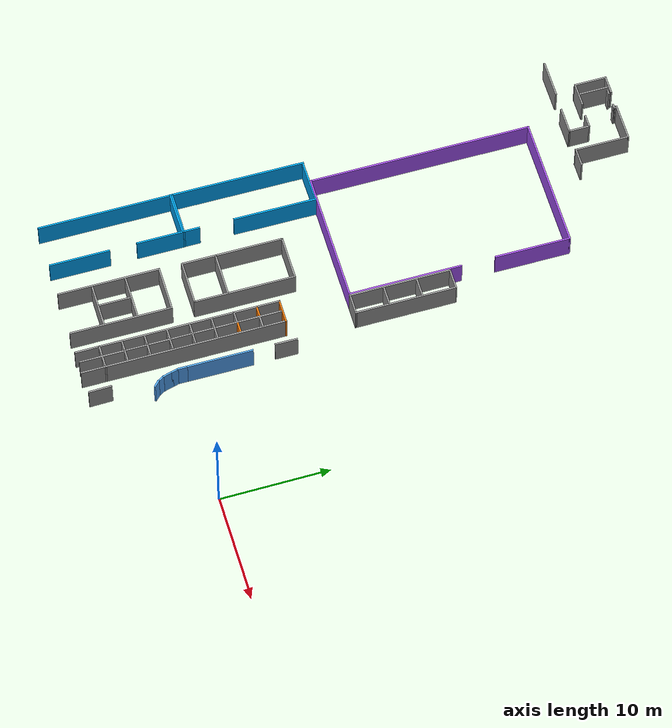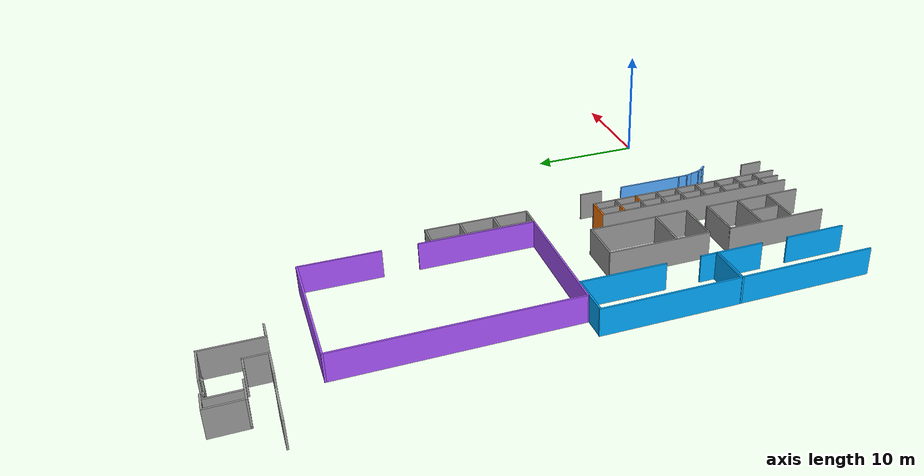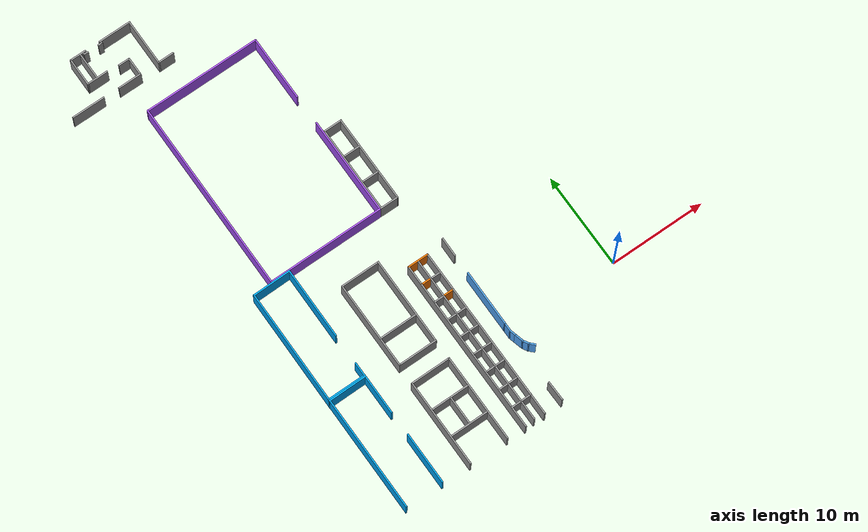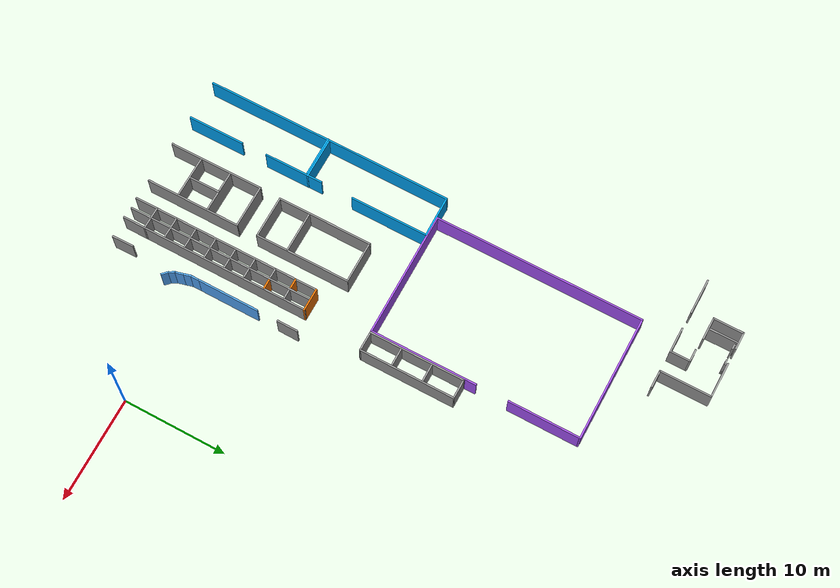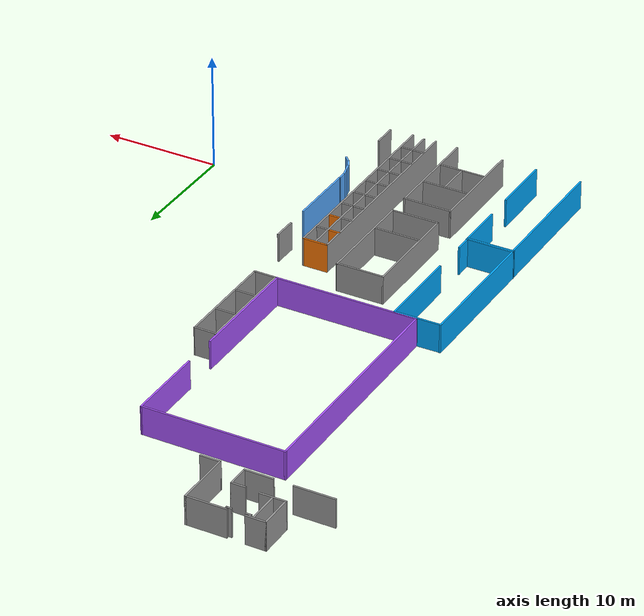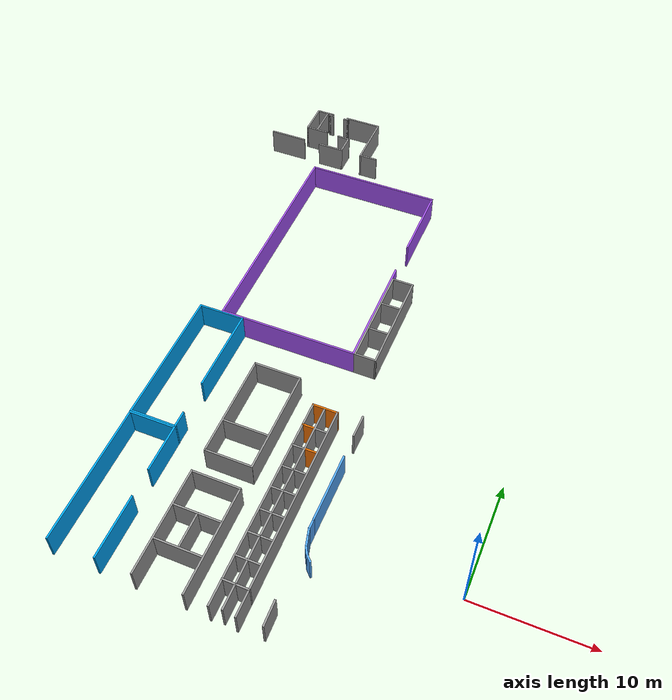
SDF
<sdf version="1.6">
 <model name="rebuilt_1">
  <pose>-2.12726 -2.76078 0 0 -0 0</pose>
  <link name="Wall_340">
   <collision name="Wall_340_Collision">
    <geometry><box><size>9.25 0.15 2.5</size></box></geometry>
    <pose>0 0 1.25 0 -0 0</pose>
   </collision>
   <visual name="Wall_340_Visual">
    <pose>0 0 1.25 0 -0 0</pose>
    <geometry><box><size>9.25 0.15 2.5</size></box></geometry>
    <material>
     <script><uri>file://media/materials/scripts/gazebo.material</uri><name>Gazebo/Grey</name></script>
     <ambient>1 1 1 1</ambient>
    </material>
    <meta><layer>0</layer></meta>
   </visual>
   <pose>-15.9433 -0.9593 0 0 0 -1.5708</pose>
  </link>
  <link name="Wall_342">
   <collision name="Wall_342_Collision">
    <geometry><box><size>9.25 0.15 2.5</size></box></geometry>
    <pose>0 0 1.25 0 -0 0</pose>
   </collision>
   <visual name="Wall_342_Visual">
    <pose>0 0 1.25 0 -0 0</pose>
    <geometry><box><size>9.25 0.15 2.5</size></box></geometry>
    <material>
     <script><uri>file://media/materials/scripts/gazebo.material</uri><name>Gazebo/Grey</name></script>
     <ambient>1 1 1 1</ambient>
    </material>
    <meta><layer>0</layer></meta>
   </visual>
   <pose>-20.0433 -0.9593 0 0 -0 1.5708</pose>
  </link>
  <link name="Wall_343">
   <collision name="Wall_343_Collision">
    <geometry><box><size>4.25 0.15 2.5</size></box></geometry>
    <pose>0 0 1.25 0 -0 0</pose>
   </collision>
   <visual name="Wall_343_Visual">
    <pose>0 0 1.25 0 -0 0</pose>
    <geometry><box><size>4.25 0.15 2.5</size></box></geometry>
    <material>
     <script><uri>file://media/materials/scripts/gazebo.material</uri><name>Gazebo/Grey</name></script>
     <ambient>1 1 1 1</ambient>
    </material>
    <meta><layer>0</layer></meta>
   </visual>
   <pose>-17.9933 3.5907 0 0 -0 0</pose>
  </link>
  <link name="Wall_345">
   <collision name="Wall_345_Collision">
    <geometry><box><size>4 0.15 2.5</size></box></geometry>
    <pose>0 0 1.25 0 -0 0</pose>
   </collision>
   <visual name="Wall_345_Visual">
    <pose>0 0 1.25 0 -0 0</pose>
    <geometry><box><size>4 0.15 2.5</size></box></geometry>
    <material>
     <script><uri>file://media/materials/scripts/gazebo.material</uri><name>Gazebo/Grey</name></script>
     <ambient>1 1 1 1</ambient>
    </material>
    <meta><layer>0</layer></meta>
   </visual>
   <pose>-17.9697 0.52391 0 0 -0 0</pose>
  </link>
  <link name="Wall_347">
   <collision name="Wall_347_Collision">
    <geometry><box><size>4 0.15 2.5</size></box></geometry>
    <pose>0 0 1.25 0 -0 0</pose>
   </collision>
   <visual name="Wall_347_Visual">
    <pose>0 0 1.25 0 -0 0</pose>
    <geometry><box><size>4 0.15 2.5</size></box></geometry>
    <material>
     <script><uri>file://media/materials/scripts/gazebo.material</uri><name>Gazebo/Grey</name></script>
     <ambient>1 1 1 1</ambient>
    </material>
    <meta><layer>0</layer></meta>
   </visual>
   <pose>-17.9697 -2.4839 0 0 -0 0</pose>
  </link>
  <link name="Wall_349">
   <collision name="Wall_349_Collision">
    <geometry><box><size>3 0.15 2.5</size></box></geometry>
    <pose>0 0 1.25 0 -0 0</pose>
   </collision>
   <visual name="Wall_349_Visual">
    <pose>0 0 1.25 0 -0 0</pose>
    <geometry><box><size>3 0.15 2.5</size></box></geometry>
    <material>
     <script><uri>file://media/materials/scripts/gazebo.material</uri><name>Gazebo/Grey</name></script>
     <ambient>1 1 1 1</ambient>
    </material>
    <meta><layer>0</layer></meta>
   </visual>
   <pose>-17.9485 -0.94095 0 0 -0 1.5708</pose>
  </link>
  <link name="Wall_352">
   <collision name="Wall_352_Collision">
    <geometry><box><size>9.25 0.15 2.5</size></box></geometry>
    <pose>0 0 1.25 0 -0 0</pose>
   </collision>
   <visual name="Wall_352_Visual">
    <pose>0 0 1.25 0 -0 0</pose>
    <geometry><box><size>9.25 0.15 2.5</size></box></geometry>
    <material>
     <script><uri>file://media/materials/scripts/gazebo.material</uri><name>Gazebo/Grey</name></script>
     <ambient>1 1 1 1</ambient>
    </material>
    <meta><layer>0</layer></meta>
   </visual>
   <pose>-19.9832 10.2049 0 0 -0 1.5708</pose>
  </link>
  <link name="Wall_353">
   <collision name="Wall_353_Collision">
    <geometry><box><size>4.14663 0.15 2.5</size></box></geometry>
    <pose>0 0 1.25 0 -0 0</pose>
   </collision>
   <visual name="Wall_353_Visual">
    <pose>0 0 1.25 0 -0 0</pose>
    <geometry><box><size>4.14663 0.15 2.5</size></box></geometry>
    <material>
     <script><uri>file://media/materials/scripts/gazebo.material</uri><name>Gazebo/Grey</name></script>
     <ambient>1 1 1 1</ambient>
    </material>
    <meta><layer>0</layer></meta>
   </visual>
   <pose>-17.9848 14.7549 0 0 -0 0</pose>
  </link>
  <link name="Wall_354">
   <collision name="Wall_354_Collision">
    <geometry><box><size>9.25 0.15 2.5</size></box></geometry>
    <pose>0 0 1.25 0 -0 0</pose>
   </collision>
   <visual name="Wall_354_Visual">
    <pose>0 0 1.25 0 -0 0</pose>
    <geometry><box><size>9.25 0.15 2.5</size></box></geometry>
    <material>
     <script><uri>file://media/materials/scripts/gazebo.material</uri><name>Gazebo/Grey</name></script>
     <ambient>1 1 1 1</ambient>
    </material>
    <meta><layer>0</layer></meta>
   </visual>
   <pose>-15.9671 10.2049 0 0 0 -1.5708</pose>
  </link>
  <link name="Wall_355">
   <collision name="Wall_355_Collision">
    <geometry><box><size>4.14663 0.15 2.5</size></box></geometry>
    <pose>0 0 1.25 0 -0 0</pose>
   </collision>
   <visual name="Wall_355_Visual">
    <pose>0 0 1.25 0 -0 0</pose>
    <geometry><box><size>4.14663 0.15 2.5</size></box></geometry>
    <material>
     <script><uri>file://media/materials/scripts/gazebo.material</uri><name>Gazebo/Grey</name></script>
     <ambient>1 1 1 1</ambient>
    </material>
    <meta><layer>0</layer></meta>
   </visual>
   <pose>-17.9848 5.65489 0 0 -0 3.14159</pose>
  </link>
  <link name="Wall_357">
   <collision name="Wall_357_Collision">
    <geometry><box><size>4 0.15 2.5</size></box></geometry>
    <pose>0 0 1.25 0 -0 0</pose>
   </collision>
   <visual name="Wall_357_Visual">
    <pose>0 0 1.25 0 -0 0</pose>
    <geometry><box><size>4 0.15 2.5</size></box></geometry>
    <material>
     <script><uri>file://media/materials/scripts/gazebo.material</uri><name>Gazebo/Grey</name></script>
     <ambient>1 1 1 1</ambient>
    </material>
    <meta><layer>0</layer></meta>
   </visual>
   <pose>-17.9769 8.69326 0 0 -0 0</pose>
  </link>
  <link name="Wall_378">
   <collision name="Wall_378_Collision">
    <geometry><box><size>2.05556 0.15 2.5</size></box></geometry>
    <pose>0 0 1.25 0 -0 0</pose>
   </collision>
   <visual name="Wall_378_Visual">
    <pose>0 0 1.25 0 -0 0</pose>
    <geometry><box><size>2.05556 0.15 2.5</size></box></geometry>
    <material>
     <script><uri>file://media/materials/scripts/gazebo.material</uri><name>Gazebo/Grey</name></script>
     <ambient>1 1 1 1</ambient>
    </material>
    <meta><layer>0</layer></meta>
   </visual>
   <pose>-9.85047 12.2135 0 0 -0 1.55916</pose>
  </link>
  <link name="Wall_380">
   <collision name="Wall_380_Collision">
    <geometry><box><size>2.25 0.15 2.5</size></box></geometry>
    <pose>0 0 1.25 0 -0 0</pose>
   </collision>
   <visual name="Wall_380_Visual">
    <pose>0 0 1.25 0 -0 0</pose>
    <geometry><box><size>2.25 0.15 2.5</size></box></geometry>
    <material>
     <script><uri>file://media/materials/scripts/gazebo.material</uri><name>Gazebo/Grey</name></script>
     <ambient>0.996078 0.47451 0.0196078 1</ambient>
    </material>
    <meta><layer>0</layer></meta>
   </visual>
   <pose>-12.8961 12.7674 0 0 -0 0</pose>
  </link>
  <link name="Wall_381">
   <collision name="Wall_381_Collision">
    <geometry><box><size>18.507 0.15 2.5</size></box></geometry>
    <pose>0 0 1.25 0 -0 0</pose>
   </collision>
   <visual name="Wall_381_Visual">
    <pose>0 0 1.25 0 -0 0</pose>
    <geometry><box><size>18.507 0.15 2.5</size></box></geometry>
    <material>
     <script><uri>file://media/materials/scripts/gazebo.material</uri><name>Gazebo/Grey</name></script>
     <ambient>1 1 1 1</ambient>
    </material>
    <meta><layer>0</layer></meta>
   </visual>
   <pose>-11.8501 3.58894 0 0 0 -1.57041</pose>
  </link>
  <link name="Wall_383">
   <collision name="Wall_383_Collision">
    <geometry><box><size>18.5 0.15 2.5</size></box></geometry>
    <pose>0 0 1.25 0 -0 0</pose>
   </collision>
   <visual name="Wall_383_Visual">
    <pose>0 0 1.25 0 -0 0</pose>
    <geometry><box><size>18.5 0.15 2.5</size></box></geometry>
    <material>
     <script><uri>file://media/materials/scripts/gazebo.material</uri><name>Gazebo/Grey</name></script>
     <ambient>1 1 1 1</ambient>
    </material>
    <meta><layer>0</layer></meta>
   </visual>
   <pose>-13.9466 3.58544 0 0 -0 1.5708</pose>
  </link>
  <link name="Wall_394">
   <collision name="Wall_394_Collision">
    <geometry><box><size>2.11278 0.15 2.5</size></box></geometry>
    <pose>0 0 1.25 0 -0 0</pose>
   </collision>
   <visual name="Wall_394_Visual">
    <pose>0 0 1.25 0 -0 0</pose>
    <geometry><box><size>2.11278 0.15 2.5</size></box></geometry>
    <material>
     <script><uri>file://media/materials/scripts/gazebo.material</uri><name>Gazebo/Grey</name></script>
     <ambient>1 1 1 1</ambient>
    </material>
    <meta><layer>0</layer></meta>
   </visual>
   <pose>-9.824 -4.47629 0 0 -0 1.59083</pose>
  </link>
  <link name="Wall_424">
   <collision name="Wall_424_Collision">
    <geometry><box><size>0.75 0.15 2.5</size></box></geometry>
    <pose>0 0 1.25 0 -0 0</pose>
   </collision>
   <visual name="Wall_424_Visual">
    <pose>0 0 1.25 0 -0 0</pose>
    <geometry><box><size>0.75 0.15 2.5</size></box></geometry>
    <material>
     <script><uri>file://media/materials/scripts/gazebo.material</uri><name>Gazebo/Grey</name></script>
     <ambient>0.333333 0.666667 1 1</ambient>
    </material>
    <meta><layer>0</layer></meta>
   </visual>
   <pose>-8.97605 0.347744 0 0 -0 2.35619</pose>
  </link>
  <link name="Wall_425">
   <collision name="Wall_425_Collision">
    <geometry><box><size>0.75 0.15 2.5</size></box></geometry>
    <pose>0 0 1.25 0 -0 0</pose>
   </collision>
   <visual name="Wall_425_Visual">
    <pose>0 0 1.25 0 -0 0</pose>
    <geometry><box><size>0.75 0.15 2.5</size></box></geometry>
    <material>
     <script><uri>file://media/materials/scripts/gazebo.material</uri><name>Gazebo/Grey</name></script>
     <ambient>0.333333 0.666667 1 1</ambient>
    </material>
    <meta><layer>0</layer></meta>
   </visual>
   <pose>-9.33818 0.819684 0 0 -0 2.0944</pose>
  </link>
  <link name="Wall_426">
   <collision name="Wall_426_Collision">
    <geometry><box><size>1 0.15 2.5</size></box></geometry>
    <pose>0 0 1.25 0 -0 0</pose>
   </collision>
   <visual name="Wall_426_Visual">
    <pose>0 0 1.25 0 -0 0</pose>
    <geometry><box><size>1 0.15 2.5</size></box></geometry>
    <material>
     <script><uri>file://media/materials/scripts/gazebo.material</uri><name>Gazebo/Grey</name></script>
     <ambient>0.333333 0.666667 1 1</ambient>
    </material>
    <meta><layer>0</layer></meta>
   </visual>
   <pose>-9.59818 1.49001 0 0 -0 1.8326</pose>
  </link>
  <link name="Wall_427">
   <collision name="Wall_427_Collision">
    <geometry><box><size>0.75 0.15 2.5</size></box></geometry>
    <pose>0 0 1.25 0 -0 0</pose>
   </collision>
   <visual name="Wall_427_Visual">
    <pose>0 0 1.25 0 -0 0</pose>
    <geometry><box><size>0.75 0.15 2.5</size></box></geometry>
    <material>
     <script><uri>file://media/materials/scripts/gazebo.material</uri><name>Gazebo/Grey</name></script>
     <ambient>0.333333 0.666667 1 1</ambient>
    </material>
    <meta><layer>0</layer></meta>
   </visual>
   <pose>-9.78582 2.19031 0 0 -0 1.8326</pose>
  </link>
  <link name="Wall_428">
   <collision name="Wall_428_Collision">
    <geometry><box><size>1 0.15 2.5</size></box></geometry>
    <pose>0 0 1.25 0 -0 0</pose>
   </collision>
   <visual name="Wall_428_Visual">
    <pose>0 0 1.25 0 -0 0</pose>
    <geometry><box><size>1 0.15 2.5</size></box></geometry>
    <material>
     <script><uri>file://media/materials/scripts/gazebo.material</uri><name>Gazebo/Grey</name></script>
     <ambient>0.333333 0.666667 1 1</ambient>
    </material>
    <meta><layer>0</layer></meta>
   </visual>
   <pose>-9.86347 2.90508 0 0 -0 1.5708</pose>
  </link>
  <link name="Wall_430">
   <collision name="Wall_430_Collision">
    <geometry><box><size>5.99066 0.15 2.5</size></box></geometry>
    <pose>0 0 1.25 0 -0 0</pose>
   </collision>
   <visual name="Wall_430_Visual">
    <pose>0 0 1.25 0 -0 0</pose>
    <geometry><box><size>5.99066 0.15 2.5</size></box></geometry>
    <material>
     <script><uri>file://media/materials/scripts/gazebo.material</uri><name>Gazebo/Grey</name></script>
     <ambient>0.333333 0.666667 1 1</ambient>
    </material>
    <meta><layer>0</layer></meta>
   </visual>
   <pose>-9.85422 6.2504 0 0 -0 1.56763</pose>
  </link>
  <link name="Wall_436">
   <collision name="Wall_436_Collision">
    <geometry><box><size>1.5 0.15 2.5</size></box></geometry>
    <pose>0 0 1.25 0 -0 0</pose>
   </collision>
   <visual name="Wall_436_Visual">
    <pose>0 0 1.25 0 -0 0</pose>
    <geometry><box><size>1.5 0.15 2.5</size></box></geometry>
    <material>
     <script><uri>file://media/materials/scripts/gazebo.material</uri><name>Gazebo/Grey</name></script>
     <ambient>0 0.666667 1 1</ambient>
    </material>
    <meta><layer>0</layer></meta>
   </visual>
   <pose>-23.1515 7.39839 0 0 0 -1.5708</pose>
  </link>
  <link name="Wall_437">
   <collision name="Wall_437_Collision">
    <geometry><box><size>4.0904 0.15 2.5</size></box></geometry>
    <pose>0 0 1.25 0 -0 0</pose>
   </collision>
   <visual name="Wall_437_Visual">
    <pose>0 0 1.25 0 -0 0</pose>
    <geometry><box><size>4.0904 0.15 2.5</size></box></geometry>
    <material>
     <script><uri>file://media/materials/scripts/gazebo.material</uri><name>Gazebo/Grey</name></script>
     <ambient>0 0.666667 1 1</ambient>
    </material>
    <meta><layer>0</layer></meta>
   </visual>
   <pose>-25.0991 6.70072 0 0 -0 3.14159</pose>
  </link>
  <link name="Wall_438">
   <collision name="Wall_438_Collision">
    <geometry><box><size>12.1375 0.15 2.5</size></box></geometry>
    <pose>0 0 1.25 0 -0 0</pose>
   </collision>
   <visual name="Wall_438_Visual">
    <pose>0 0 1.25 0 -0 0</pose>
    <geometry><box><size>12.1375 0.15 2.5</size></box></geometry>
    <material>
     <script><uri>file://media/materials/scripts/gazebo.material</uri><name>Gazebo/Grey</name></script>
     <ambient>0 0.666667 1 1</ambient>
    </material>
    <meta><layer>0</layer></meta>
   </visual>
   <pose>-27.0693 12.7171 0 0 -0 1.56702</pose>
  </link>
  <link name="Wall_439">
   <collision name="Wall_439_Collision">
    <geometry><box><size>4.04629 0.15 2.5</size></box></geometry>
    <pose>0 0 1.25 0 -0 0</pose>
   </collision>
   <visual name="Wall_439_Visual">
    <pose>0 0 1.25 0 -0 0</pose>
    <geometry><box><size>4.04629 0.15 2.5</size></box></geometry>
    <material>
     <script><uri>file://media/materials/scripts/gazebo.material</uri><name>Gazebo/Grey</name></script>
     <ambient>0 0.666667 1 1</ambient>
    </material>
    <meta><layer>0</layer></meta>
   </visual>
   <pose>-25.0759 18.7108 0 0 -0 0.011634</pose>
  </link>
  <link name="Wall_440">
   <collision name="Wall_440_Collision">
    <geometry><box><size>7.59138 0.15 2.5</size></box></geometry>
    <pose>0 0 1.25 0 -0 0</pose>
   </collision>
   <visual name="Wall_440_Visual">
    <pose>0 0 1.25 0 -0 0</pose>
    <geometry><box><size>7.59138 0.15 2.5</size></box></geometry>
    <material>
     <script><uri>file://media/materials/scripts/gazebo.material</uri><name>Gazebo/Grey</name></script>
     <ambient>0 0.666667 1 1</ambient>
    </material>
    <meta><layer>0</layer></meta>
   </visual>
   <pose>-23.1166 15.0127 0 0 0 -1.57384</pose>
  </link>
  <link name="Wall_444">
   <collision name="Wall_444_Collision">
    <geometry><box><size>4.10375 0.15 2.5</size></box></geometry>
    <pose>0 0 1.25 0 -0 0</pose>
   </collision>
   <visual name="Wall_444_Visual">
    <pose>0 0 1.25 0 -0 0</pose>
    <geometry><box><size>4.10375 0.15 2.5</size></box></geometry>
    <material>
     <script><uri>file://media/materials/scripts/gazebo.material</uri><name>Gazebo/Grey</name></script>
     <ambient>0 0.666667 1 1</ambient>
    </material>
    <meta><layer>0</layer></meta>
   </visual>
   <pose>-25.1263 6.56468 0 0 -0 0.006555</pose>
  </link>
  <link name="Wall_447">
   <collision name="Wall_447_Collision">
    <geometry><box><size>12 0.15 2.5</size></box></geometry>
    <pose>0 0 1.25 0 -0 0</pose>
   </collision>
   <visual name="Wall_447_Visual">
    <pose>0 0 1.25 0 -0 0</pose>
    <geometry><box><size>12 0.15 2.5</size></box></geometry>
    <material>
     <script><uri>file://media/materials/scripts/gazebo.material</uri><name>Gazebo/Grey</name></script>
     <ambient>0 0.666667 1 1</ambient>
    </material>
    <meta><layer>0</layer></meta>
   </visual>
   <pose>-27.0772 0.484177 0 0 -0 1.5708</pose>
  </link>
  <link name="Wall_449">
   <collision name="Wall_449_Collision">
    <geometry><box><size>4.25 0.15 2.5</size></box></geometry>
    <pose>0 0 1.25 0 -0 0</pose>
   </collision>
   <visual name="Wall_449_Visual">
    <pose>0 0 1.25 0 -0 0</pose>
    <geometry><box><size>4.25 0.15 2.5</size></box></geometry>
    <material>
     <script><uri>file://media/materials/scripts/gazebo.material</uri><name>Gazebo/Grey</name></script>
     <ambient>0 0.666667 1 1</ambient>
    </material>
    <meta><layer>0</layer></meta>
   </visual>
   <pose>-23.1365 4.51468 0 0 0 -1.5708</pose>
  </link>
  <link name="Wall_451">
   <collision name="Wall_451_Collision">
    <geometry><box><size>5.5 0.15 2.5</size></box></geometry>
    <pose>0 0 1.25 0 -0 0</pose>
   </collision>
   <visual name="Wall_451_Visual">
    <pose>0 0 1.25 0 -0 0</pose>
    <geometry><box><size>5.5 0.15 2.5</size></box></geometry>
    <material>
     <script><uri>file://media/materials/scripts/gazebo.material</uri><name>Gazebo/Grey</name></script>
     <ambient>0 0.666667 1 1</ambient>
    </material>
    <meta><layer>0</layer></meta>
   </visual>
   <pose>-23.1089 -2.78296 0 0 -0 1.5708</pose>
  </link>
  <link name="Wall_510">
   <collision name="Wall_510_Collision">
    <geometry><box><size>12.25 0.15 2.5</size></box></geometry>
    <pose>0 0 1.25 0 -0 0</pose>
   </collision>
   <visual name="Wall_510_Visual">
    <pose>0 0 1.25 0 -0 0</pose>
    <geometry><box><size>12.25 0.15 2.5</size></box></geometry>
    <material>
     <script><uri>file://media/materials/scripts/gazebo.material</uri><name>Gazebo/Grey</name></script>
     <ambient>0.666667 0.333333 1 1</ambient>
    </material>
    <meta><layer>0</layer></meta>
   </visual>
   <pose>-18.9691 18.8369 0 0 -0 0</pose>
  </link>
  <link name="Wall_511">
   <collision name="Wall_511_Collision">
    <geometry><box><size>10.3267 0.15 2.5</size></box></geometry>
    <pose>0 0 1.25 0 -0 0</pose>
   </collision>
   <visual name="Wall_511_Visual">
    <pose>0 0 1.25 0 -0 0</pose>
    <geometry><box><size>10.3267 0.15 2.5</size></box></geometry>
    <material>
     <script><uri>file://media/materials/scripts/gazebo.material</uri><name>Gazebo/Grey</name></script>
     <ambient>0.666667 0.333333 1 1</ambient>
    </material>
    <meta><layer>0</layer></meta>
   </visual>
   <pose>-12.9159 23.9284 0 0 -0 1.5708</pose>
  </link>
  <link name="Wall_513">
   <collision name="Wall_513_Collision">
    <geometry><box><size>6.94023 0.15 2.5</size></box></geometry>
    <pose>0 0 1.25 0 -0 0</pose>
   </collision>
   <visual name="Wall_513_Visual">
    <pose>0 0 1.25 0 -0 0</pose>
    <geometry><box><size>6.94023 0.15 2.5</size></box></geometry>
    <material>
     <script><uri>file://media/materials/scripts/gazebo.material</uri><name>Gazebo/Grey</name></script>
     <ambient>0.666667 0.333333 1 1</ambient>
    </material>
    <meta><layer>0</layer></meta>
   </visual>
   <pose>-12.919 35.5853 0 0 -0 1.56903</pose>
  </link>
  <link name="Wall_514">
   <collision name="Wall_514_Collision">
    <geometry><box><size>12.25 0.15 2.5</size></box></geometry>
    <pose>0 0 1.25 0 -0 0</pose>
   </collision>
   <visual name="Wall_514_Visual">
    <pose>0 0 1.25 0 -0 0</pose>
    <geometry><box><size>12.25 0.15 2.5</size></box></geometry>
    <material>
     <script><uri>file://media/materials/scripts/gazebo.material</uri><name>Gazebo/Grey</name></script>
     <ambient>0.666667 0.333333 1 1</ambient>
    </material>
    <meta><layer>0</layer></meta>
   </visual>
   <pose>-18.9631 38.9804 0 0 -0 3.14159</pose>
  </link>
  <link name="Wall_516">
   <collision name="Wall_516_Collision">
    <geometry><box><size>20.2022 0.15 2.5</size></box></geometry>
    <pose>0 0 1.25 0 -0 0</pose>
   </collision>
   <visual name="Wall_516_Visual">
    <pose>0 0 1.25 0 -0 0</pose>
    <geometry><box><size>20.2022 0.15 2.5</size></box></geometry>
    <material>
     <script><uri>file://media/materials/scripts/gazebo.material</uri><name>Gazebo/Grey</name></script>
     <ambient>0.666667 0.333333 1 1</ambient>
    </material>
    <meta><layer>0</layer></meta>
   </visual>
   <pose>-25.019 28.9662 0 0 0 -1.57139</pose>
  </link>
  <link name="Wall_519">
   <collision name="Wall_519_Collision">
    <geometry><box><size>9.25 0.15 2.5</size></box></geometry>
    <pose>0 0 1.25 0 -0 0</pose>
   </collision>
   <visual name="Wall_519_Visual">
    <pose>0 0 1.25 0 -0 0</pose>
    <geometry><box><size>9.25 0.15 2.5</size></box></geometry>
    <material>
     <script><uri>file://media/materials/scripts/gazebo.material</uri><name>Gazebo/Grey</name></script>
     <ambient>1 1 1 1</ambient>
    </material>
    <meta><layer>0</layer></meta>
   </visual>
   <pose>-10.9396 23.3766 0 0 0 -1.5708</pose>
  </link>
  <link name="Wall_520">
   <collision name="Wall_520_Collision">
    <geometry><box><size>1.98094 0.15 2.5</size></box></geometry>
    <pose>0 0 1.25 0 -0 0</pose>
   </collision>
   <visual name="Wall_520_Visual">
    <pose>0 0 1.25 0 -0 0</pose>
    <geometry><box><size>1.98094 0.15 2.5</size></box></geometry>
    <material>
     <script><uri>file://media/materials/scripts/gazebo.material</uri><name>Gazebo/Grey</name></script>
     <ambient>1 1 1 1</ambient>
    </material>
    <meta><layer>0</layer></meta>
   </visual>
   <pose>-11.855 18.8314 0 0 -0 3.13636</pose>
  </link>
  <link name="Wall_521">
   <collision name="Wall_521_Collision">
    <geometry><box><size>9.25 0.15 2.5</size></box></geometry>
    <pose>0 0 1.25 0 -0 0</pose>
   </collision>
   <visual name="Wall_521_Visual">
    <pose>0 0 1.25 0 -0 0</pose>
    <geometry><box><size>9.25 0.15 2.5</size></box></geometry>
    <material>
     <script><uri>file://media/materials/scripts/gazebo.material</uri><name>Gazebo/Grey</name></script>
     <ambient>1 1 1 1</ambient>
    </material>
    <meta><layer>0</layer></meta>
   </visual>
   <pose>-12.7673 23.3894 0 0 -0 1.5708</pose>
  </link>
  <link name="Wall_522">
   <collision name="Wall_522_Collision">
    <geometry><box><size>1.98094 0.15 2.5</size></box></geometry>
    <pose>0 0 1.25 0 -0 0</pose>
   </collision>
   <visual name="Wall_522_Visual">
    <pose>0 0 1.25 0 -0 0</pose>
    <geometry><box><size>1.98094 0.15 2.5</size></box></geometry>
    <material>
     <script><uri>file://media/materials/scripts/gazebo.material</uri><name>Gazebo/Grey</name></script>
     <ambient>1 1 1 1</ambient>
    </material>
    <meta><layer>0</layer></meta>
   </visual>
   <pose>-11.855 27.9314 0 0 0 -0.005235</pose>
  </link>
  <link name="Wall_524">
   <collision name="Wall_524_Collision">
    <geometry><box><size>1.75 0.15 2.5</size></box></geometry>
    <pose>0 0 1.25 0 -0 0</pose>
   </collision>
   <visual name="Wall_524_Visual">
    <pose>0 0 1.25 0 -0 0</pose>
    <geometry><box><size>1.75 0.15 2.5</size></box></geometry>
    <material>
     <script><uri>file://media/materials/scripts/gazebo.material</uri><name>Gazebo/Grey</name></script>
     <ambient>1 1 1 1</ambient>
    </material>
    <meta><layer>0</layer></meta>
   </visual>
   <pose>-11.8553 24.8856 0 0 -0 0</pose>
  </link>
  <link name="Wall_526">
   <collision name="Wall_526_Collision">
    <geometry><box><size>1.75 0.15 2.5</size></box></geometry>
    <pose>0 0 1.25 0 -0 0</pose>
   </collision>
   <visual name="Wall_526_Visual">
    <pose>0 0 1.25 0 -0 0</pose>
    <geometry><box><size>1.75 0.15 2.5</size></box></geometry>
    <material>
     <script><uri>file://media/materials/scripts/gazebo.material</uri><name>Gazebo/Grey</name></script>
     <ambient>1 1 1 1</ambient>
    </material>
    <meta><layer>0</layer></meta>
   </visual>
   <pose>-11.8382 21.8863 0 0 -0 0</pose>
  </link>
  <link name="Wall_606">
   <collision name="Wall_606_Collision">
    <geometry><box><size>3.5 0.15 2.5</size></box></geometry>
    <pose>0 0 1.25 0 -0 0</pose>
   </collision>
   <visual name="Wall_606_Visual">
    <pose>0 0 1.25 0 -0 0</pose>
    <geometry><box><size>3.5 0.15 2.5</size></box></geometry>
    <material>
     <script><uri>file://media/materials/scripts/gazebo.material</uri><name>Gazebo/Grey</name></script>
     <ambient>1 1 1 1</ambient>
    </material>
    <meta><layer>0</layer></meta>
   </visual>
   <pose>-29.334 42.4226 0 0 -0 0</pose>
  </link>
  <link name="Wall_608">
   <collision name="Wall_608_Collision">
    <geometry><box><size>2.5 0.15 2.5</size></box></geometry>
    <pose>0 0 1.25 0 -0 0</pose>
   </collision>
   <visual name="Wall_608_Visual">
    <pose>0 0 1.25 0 -0 0</pose>
    <geometry><box><size>2.5 0.15 2.5</size></box></geometry>
    <material>
     <script><uri>file://media/materials/scripts/gazebo.material</uri><name>Gazebo/Grey</name></script>
     <ambient>1 1 1 1</ambient>
    </material>
    <meta><layer>0</layer></meta>
   </visual>
   <pose>-24.744 42.367 0 0 -0 0</pose>
  </link>
  <link name="Wall_609">
   <collision name="Wall_609_Collision">
    <geometry><box><size>2 0.15 2.5</size></box></geometry>
    <pose>0 0 1.25 0 -0 0</pose>
   </collision>
   <visual name="Wall_609_Visual">
    <pose>0 0 1.25 0 -0 0</pose>
    <geometry><box><size>2 0.15 2.5</size></box></geometry>
    <material>
     <script><uri>file://media/materials/scripts/gazebo.material</uri><name>Gazebo/Grey</name></script>
     <ambient>1 1 1 1</ambient>
    </material>
    <meta><layer>0</layer></meta>
   </visual>
   <pose>-23.569 43.292 0 0 -0 1.5708</pose>
  </link>
  <link name="Wall_610">
   <collision name="Wall_610_Collision">
    <geometry><box><size>1.25 0.15 2.5</size></box></geometry>
    <pose>0 0 1.25 0 -0 0</pose>
   </collision>
   <visual name="Wall_610_Visual">
    <pose>0 0 1.25 0 -0 0</pose>
    <geometry><box><size>1.25 0.15 2.5</size></box></geometry>
    <material>
     <script><uri>file://media/materials/scripts/gazebo.material</uri><name>Gazebo/Grey</name></script>
     <ambient>1 1 1 1</ambient>
    </material>
    <meta><layer>0</layer></meta>
   </visual>
   <pose>-24.119 44.217 0 0 -0 3.14159</pose>
  </link>
  <link name="Wall_612">
   <collision name="Wall_612_Collision">
    <geometry><box><size>2.25 0.15 2.5</size></box></geometry>
    <pose>0 0 1.25 0 -0 0</pose>
   </collision>
   <visual name="Wall_612_Visual">
    <pose>0 0 1.25 0 -0 0</pose>
    <geometry><box><size>2.25 0.15 2.5</size></box></geometry>
    <material>
     <script><uri>file://media/materials/scripts/gazebo.material</uri><name>Gazebo/Grey</name></script>
     <ambient>1 1 1 1</ambient>
    </material>
    <meta><layer>0</layer></meta>
   </visual>
   <pose>-27.0306 44.3576 0 0 -0 3.14159</pose>
  </link>
  <link name="Wall_620">
   <collision name="Wall_620_Collision">
    <geometry><box><size>3 0.15 2.5</size></box></geometry>
    <pose>0 0 1.25 0 -0 0</pose>
   </collision>
   <visual name="Wall_620_Visual">
    <pose>0 0 1.25 0 -0 0</pose>
    <geometry><box><size>3 0.15 2.5</size></box></geometry>
    <material>
     <script><uri>file://media/materials/scripts/gazebo.material</uri><name>Gazebo/Grey</name></script>
     <ambient>1 1 1 1</ambient>
    </material>
    <meta><layer>0</layer></meta>
   </visual>
   <pose>-28.0806 45.7826 0 0 -0 1.5708</pose>
  </link>
  <link name="Wall_621">
   <collision name="Wall_621_Collision">
    <geometry><box><size>1.75 0.15 2.5</size></box></geometry>
    <pose>0 0 1.25 0 -0 0</pose>
   </collision>
   <visual name="Wall_621_Visual">
    <pose>0 0 1.25 0 -0 0</pose>
    <geometry><box><size>1.75 0.15 2.5</size></box></geometry>
    <material>
     <script><uri>file://media/materials/scripts/gazebo.material</uri><name>Gazebo/Grey</name></script>
     <ambient>1 1 1 1</ambient>
    </material>
    <meta><layer>0</layer></meta>
   </visual>
   <pose>-27.2806 47.2076 0 0 -0 0</pose>
  </link>
  <link name="Wall_625">
   <collision name="Wall_625_Collision">
    <geometry><box><size>2.75 0.15 2.5</size></box></geometry>
    <pose>0 0 1.25 0 -0 0</pose>
   </collision>
   <visual name="Wall_625_Visual">
    <pose>0 0 1.25 0 -0 0</pose>
    <geometry><box><size>2.75 0.15 2.5</size></box></geometry>
    <material>
     <script><uri>file://media/materials/scripts/gazebo.material</uri><name>Gazebo/Grey</name></script>
     <ambient>1 1 1 1</ambient>
    </material>
    <meta><layer>0</layer></meta>
   </visual>
   <pose>-27.0423 45.7713 0 0 0 -1.5708</pose>
  </link>
  <link name="Wall_627">
   <collision name="Wall_627_Collision">
    <geometry><box><size>0.5 0.15 2.5</size></box></geometry>
    <pose>0 0 1.25 0 -0 0</pose>
   </collision>
   <visual name="Wall_627_Visual">
    <pose>0 0 1.25 0 -0 0</pose>
    <geometry><box><size>0.5 0.15 2.5</size></box></geometry>
    <material>
     <script><uri>file://media/materials/scripts/gazebo.material</uri><name>Gazebo/Grey</name></script>
     <ambient>1 1 1 1</ambient>
    </material>
    <meta><layer>0</layer></meta>
   </visual>
   <pose>-26.5379 46.9691 0 0 -0 3.14159</pose>
  </link>
  <link name="Wall_629">
   <collision name="Wall_629_Collision">
    <geometry><box><size>0.25 0.15 2.5</size></box></geometry>
    <pose>0 0 1.25 0 -0 0</pose>
   </collision>
   <visual name="Wall_629_Visual">
    <pose>0 0 1.25 0 -0 0</pose>
    <geometry><box><size>0.25 0.15 2.5</size></box></geometry>
    <material>
     <script><uri>file://media/materials/scripts/gazebo.material</uri><name>Gazebo/Grey</name></script>
     <ambient>1 1 1 1</ambient>
    </material>
    <meta><layer>0</layer></meta>
   </visual>
   <pose>-26.7129 47.0191 0 0 -0 1.5708</pose>
  </link>
  <link name="Wall_631">
   <collision name="Wall_631_Collision">
    <geometry><box><size>0.5 0.15 2.5</size></box></geometry>
    <pose>0 0 1.25 0 -0 0</pose>
   </collision>
   <visual name="Wall_631_Visual">
    <pose>0 0 1.25 0 -0 0</pose>
    <geometry><box><size>0.5 0.15 2.5</size></box></geometry>
    <material>
     <script><uri>file://media/materials/scripts/gazebo.material</uri><name>Gazebo/Grey</name></script>
     <ambient>1 1 1 1</ambient>
    </material>
    <meta><layer>0</layer></meta>
   </visual>
   <pose>-24.9493 46.9571 0 0 -0 0</pose>
  </link>
  <link name="Wall_632">
   <collision name="Wall_632_Collision">
    <geometry><box><size>0.25 0.15 2.5</size></box></geometry>
    <pose>0 0 1.25 0 -0 0</pose>
   </collision>
   <visual name="Wall_632_Visual">
    <pose>0 0 1.25 0 -0 0</pose>
    <geometry><box><size>0.25 0.15 2.5</size></box></geometry>
    <material>
     <script><uri>file://media/materials/scripts/gazebo.material</uri><name>Gazebo/Grey</name></script>
     <ambient>1 1 1 1</ambient>
    </material>
    <meta><layer>0</layer></meta>
   </visual>
   <pose>-24.7743 47.0071 0 0 -0 1.5708</pose>
  </link>
  <link name="Wall_635">
   <collision name="Wall_635_Collision">
    <geometry><box><size>3.5 0.15 2.5</size></box></geometry>
    <pose>0 0 1.25 0 -0 0</pose>
   </collision>
   <visual name="Wall_635_Visual">
    <pose>0 0 1.25 0 -0 0</pose>
    <geometry><box><size>3.5 0.15 2.5</size></box></geometry>
    <material>
     <script><uri>file://media/materials/scripts/gazebo.material</uri><name>Gazebo/Grey</name></script>
     <ambient>1 1 1 1</ambient>
    </material>
    <meta><layer>0</layer></meta>
   </visual>
   <pose>-23.2039 47.1856 0 0 -0 3.14159</pose>
  </link>
  <link name="Wall_637">
   <collision name="Wall_637_Collision">
    <geometry><box><size>5 0.15 2.5</size></box></geometry>
    <pose>0 0 1.25 0 -0 0</pose>
   </collision>
   <visual name="Wall_637_Visual">
    <pose>0 0 1.25 0 -0 0</pose>
    <geometry><box><size>5 0.15 2.5</size></box></geometry>
    <material>
     <script><uri>file://media/materials/scripts/gazebo.material</uri><name>Gazebo/Grey</name></script>
     <ambient>1 1 1 1</ambient>
    </material>
    <meta><layer>0</layer></meta>
   </visual>
   <pose>-21.5289 44.7606 0 0 0 -1.5708</pose>
  </link>
  <link name="Wall_638">
   <collision name="Wall_638_Collision">
    <geometry><box><size>1.75 0.15 2.5</size></box></geometry>
    <pose>0 0 1.25 0 -0 0</pose>
   </collision>
   <visual name="Wall_638_Visual">
    <pose>0 0 1.25 0 -0 0</pose>
    <geometry><box><size>1.75 0.15 2.5</size></box></geometry>
    <material>
     <script><uri>file://media/materials/scripts/gazebo.material</uri><name>Gazebo/Grey</name></script>
     <ambient>1 1 1 1</ambient>
    </material>
    <meta><layer>0</layer></meta>
   </visual>
   <pose>-20.7289 42.3356 0 0 -0 0</pose>
  </link>
  <link name="Wall_666">
   <collision name="Wall_666_Collision">
    <geometry><box><size>18.25 0.15 2.5</size></box></geometry>
    <pose>0 0 1.25 0 -0 0</pose>
   </collision>
   <visual name="Wall_666_Visual">
    <pose>0 0 1.25 0 -0 0</pose>
    <geometry><box><size>18.25 0.15 2.5</size></box></geometry>
    <material>
     <script><uri>file://media/materials/scripts/gazebo.material</uri><name>Gazebo/Grey</name></script>
     <ambient>1 1 1 1</ambient>
    </material>
    <meta><layer>0</layer></meta>
   </visual>
   <pose>-12.9212 3.59507 0 0 0 -1.5708</pose>
  </link>
  <link name="Wall_668">
   <collision name="Wall_668_Collision">
    <geometry><box><size>2.25 0.15 2.5</size></box></geometry>
    <pose>0 0 1.25 0 -0 0</pose>
   </collision>
   <visual name="Wall_668_Visual">
    <pose>0 0 1.25 0 -0 0</pose>
    <geometry><box><size>2.25 0.15 2.5</size></box></geometry>
    <material>
     <script><uri>file://media/materials/scripts/gazebo.material</uri><name>Gazebo/Grey</name></script>
     <ambient>1 1 1 1</ambient>
    </material>
    <meta><layer>0</layer></meta>
   </visual>
   <pose>-12.8943 -3.4543 0 0 -0 0</pose>
  </link>
  <link name="Wall_670">
   <collision name="Wall_670_Collision">
    <geometry><box><size>2 0.15 2.5</size></box></geometry>
    <pose>0 0 1.25 0 -0 0</pose>
   </collision>
   <visual name="Wall_670_Visual">
    <pose>0 0 1.25 0 -0 0</pose>
    <geometry><box><size>2 0.15 2.5</size></box></geometry>
    <material>
     <script><uri>file://media/materials/scripts/gazebo.material</uri><name>Gazebo/Grey</name></script>
     <ambient>1 1 1 1</ambient>
    </material>
    <meta><layer>0</layer></meta>
   </visual>
   <pose>-12.9196 -1.43797 0 0 -0 0</pose>
  </link>
  <link name="Wall_672">
   <collision name="Wall_672_Collision">
    <geometry><box><size>2 0.15 2.5</size></box></geometry>
    <pose>0 0 1.25 0 -0 0</pose>
   </collision>
   <visual name="Wall_672_Visual">
    <pose>0 0 1.25 0 -0 0</pose>
    <geometry><box><size>2 0.15 2.5</size></box></geometry>
    <material>
     <script><uri>file://media/materials/scripts/gazebo.material</uri><name>Gazebo/Grey</name></script>
     <ambient>1 1 1 1</ambient>
    </material>
    <meta><layer>0</layer></meta>
   </visual>
   <pose>-12.8966 0.593692 0 0 -0 0</pose>
  </link>
  <link name="Wall_674">
   <collision name="Wall_674_Collision">
    <geometry><box><size>2 0.15 2.5</size></box></geometry>
    <pose>0 0 1.25 0 -0 0</pose>
   </collision>
   <visual name="Wall_674_Visual">
    <pose>0 0 1.25 0 -0 0</pose>
    <geometry><box><size>2 0.15 2.5</size></box></geometry>
    <material>
     <script><uri>file://media/materials/scripts/gazebo.material</uri><name>Gazebo/Grey</name></script>
     <ambient>1 1 1 1</ambient>
    </material>
    <meta><layer>0</layer></meta>
   </visual>
   <pose>-12.8889 2.61769 0 0 -0 0</pose>
  </link>
  <link name="Wall_676">
   <collision name="Wall_676_Collision">
    <geometry><box><size>2 0.15 2.5</size></box></geometry>
    <pose>0 0 1.25 0 -0 0</pose>
   </collision>
   <visual name="Wall_676_Visual">
    <pose>0 0 1.25 0 -0 0</pose>
    <geometry><box><size>2 0.15 2.5</size></box></geometry>
    <material>
     <script><uri>file://media/materials/scripts/gazebo.material</uri><name>Gazebo/Grey</name></script>
     <ambient>1 1 1 1</ambient>
    </material>
    <meta><layer>0</layer></meta>
   </visual>
   <pose>-12.8889 4.64935 0 0 -0 0</pose>
  </link>
  <link name="Wall_678">
   <collision name="Wall_678_Collision">
    <geometry><box><size>2 0.15 2.5</size></box></geometry>
    <pose>0 0 1.25 0 -0 0</pose>
   </collision>
   <visual name="Wall_678_Visual">
    <pose>0 0 1.25 0 -0 0</pose>
    <geometry><box><size>2 0.15 2.5</size></box></geometry>
    <material>
     <script><uri>file://media/materials/scripts/gazebo.material</uri><name>Gazebo/Grey</name></script>
     <ambient>1 1 1 1</ambient>
    </material>
    <meta><layer>0</layer></meta>
   </visual>
   <pose>-12.9043 6.62735 0 0 -0 0</pose>
  </link>
  <link name="Wall_684">
   <collision name="Wall_684_Collision">
    <geometry><box><size>1 0.15 2.5</size></box></geometry>
    <pose>0 0 1.25 0 -0 0</pose>
   </collision>
   <visual name="Wall_684_Visual">
    <pose>0 0 1.25 0 -0 0</pose>
    <geometry><box><size>1 0.15 2.5</size></box></geometry>
    <material>
     <script><uri>file://media/materials/scripts/gazebo.material</uri><name>Gazebo/Grey</name></script>
     <ambient>1 1 1 1</ambient>
    </material>
    <meta><layer>0</layer></meta>
   </visual>
   <pose>-13.4579 8.66668 0 0 -0 0</pose>
  </link>
  <link name="Wall_686">
   <collision name="Wall_686_Collision">
    <geometry><box><size>1 0.15 2.5</size></box></geometry>
    <pose>0 0 1.25 0 -0 0</pose>
   </collision>
   <visual name="Wall_686_Visual">
    <pose>0 0 1.25 0 -0 0</pose>
    <geometry><box><size>1 0.15 2.5</size></box></geometry>
    <material>
     <script><uri>file://media/materials/scripts/gazebo.material</uri><name>Gazebo/Grey</name></script>
     <ambient>0.996078 0.47451 0.0196078 1</ambient>
    </material>
    <meta><layer>0</layer></meta>
   </visual>
   <pose>-12.3693 8.68968 0 0 -0 0</pose>
  </link>
  <link name="Wall_688">
   <collision name="Wall_688_Collision">
    <geometry><box><size>1 0.15 2.5</size></box></geometry>
    <pose>0 0 1.25 0 -0 0</pose>
   </collision>
   <visual name="Wall_688_Visual">
    <pose>0 0 1.25 0 -0 0</pose>
    <geometry><box><size>1 0.15 2.5</size></box></geometry>
    <material>
     <script><uri>file://media/materials/scripts/gazebo.material</uri><name>Gazebo/Grey</name></script>
     <ambient>0.996078 0.47451 0.0196078 1</ambient>
    </material>
    <meta><layer>0</layer></meta>
   </visual>
   <pose>-13.4809 10.7137 0 0 -0 0</pose>
  </link>
  <link name="Wall_691">
   <collision name="Wall_691_Collision">
    <geometry><box><size>1 0.15 2.5</size></box></geometry>
    <pose>0 0 1.25 0 -0 0</pose>
   </collision>
   <visual name="Wall_691_Visual">
    <pose>0 0 1.25 0 -0 0</pose>
    <geometry><box><size>1 0.15 2.5</size></box></geometry>
    <material>
     <script><uri>file://media/materials/scripts/gazebo.material</uri><name>Gazebo/Grey</name></script>
     <ambient>1 1 1 1</ambient>
    </material>
    <meta><layer>0</layer></meta>
   </visual>
   <pose>-12.3769 10.6983 0 0 -0 0</pose>
  </link>
  <static>1</static>
 </model>
</sdf>
